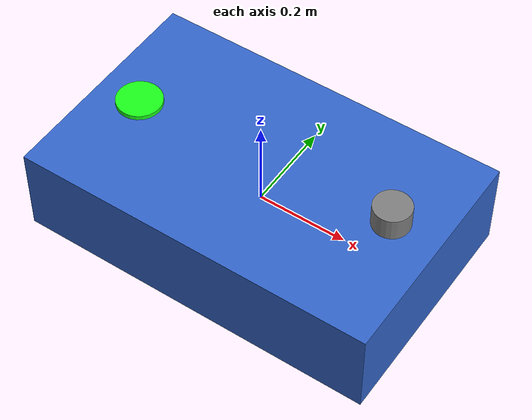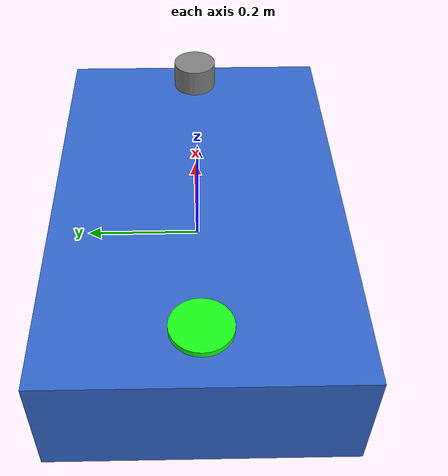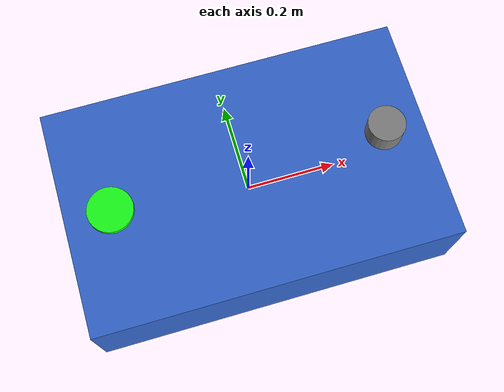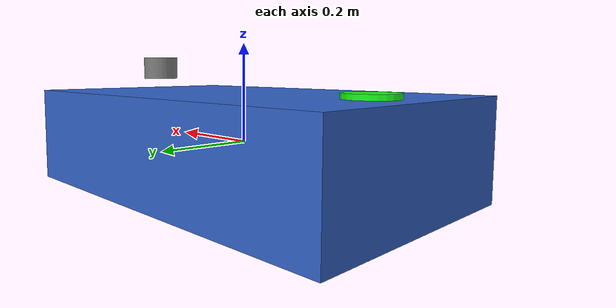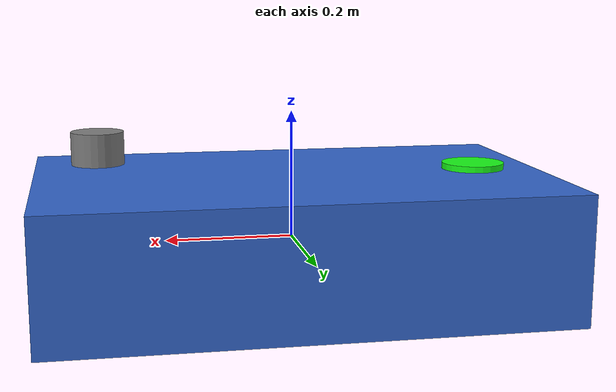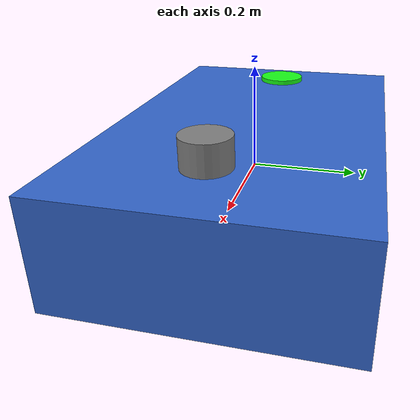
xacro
<?xml version="1.0"?>
<robot name="blueboat" xmlns:xacro="http://www.ros.org/wiki/xacro">

    <!-- Properties (adjust dimensions as needed for your actual robot) -->
    <xacro:property name="base_length" value="0.8" />
    <xacro:property name="base_width" value="0.5" />
    <xacro:property name="base_height" value="0.2" />
    <!-- Placeholder Sensor Offsets -->
    <xacro:property name="imu_offset_x" value="0.1" />   <!-- 10cm forward -->
    <xacro:property name="imu_offset_y" value="0.0" />   <!-- Centered -->
    <xacro:property name="imu_offset_z" value="0.05" />  <!-- 5cm up -->
    <xacro:property name="gps_offset_x" value="-0.3" />  <!-- 30cm backward -->
    <xacro:property name="gps_offset_y" value="0.0" />   <!-- Centered -->
    <xacro:property name="gps_offset_z" value="0.1" />   <!-- 10cm up -->
    <xacro:property name="lidar_offset_x" value="0.3" /> <!-- 30cm forward -->
    <xacro:property name="lidar_offset_y" value="0.0" /> <!-- Centered -->
    <xacro:property name="lidar_offset_z" value="0.15" /> <!-- 15cm up -->

    <!-- Base Link (Boat Chassis) -->
    <link name="base_link">
        <visual> <geometry> <box size="${base_length} ${base_width} ${base_height}"/> </geometry>
            <material name="blue"> <color rgba="0.2 0.4 0.8 1.0"/> </material>
        </visual>
        <collision> <geometry> <box size="${base_length} ${base_width} ${base_height}"/> </geometry> </collision>
    </link>

    <!-- IMU Link & Joint -->
    <link name="imu_link">
         <visual> <geometry> <box size="0.02 0.02 0.01"/> </geometry> <material name="red"> <color rgba="1.0 0.1 0.1 1.0"/> </material> </visual>
    </link>
    <joint name="imu_joint" type="fixed"> <parent link="base_link"/> <child link="imu_link"/> <origin xyz="${imu_offset_x} ${imu_offset_y} ${imu_offset_z}" rpy="0 0 0"/> </joint>

    <!-- GPS Link & Joint -->
    <link name="gps_link">
         <visual> <geometry> <cylinder radius="0.05" length="0.02"/> </geometry> <material name="green"> <color rgba="0.1 1.0 0.1 1.0"/> </material> </visual>
    </link>
    <joint name="gps_joint" type="fixed"> <parent link="base_link"/> <child link="gps_link"/> <origin xyz="${gps_offset_x} ${gps_offset_y} ${gps_offset_z}" rpy="0 0 0"/> </joint>

    <!-- LiDAR Link & Joint -->
    <link name="lidar_link">
         <visual> <geometry> <cylinder radius="0.04" length="0.05"/> </geometry> <material name="grey"> <color rgba="0.5 0.5 0.5 1.0"/> </material> </visual>
    </link>
    <joint name="lidar_joint" type="fixed"> <parent link="base_link"/> <child link="lidar_link"/> <origin xyz="${lidar_offset_x} ${lidar_offset_y} ${lidar_offset_z}" rpy="0 0 0"/> </joint>

</robot>
